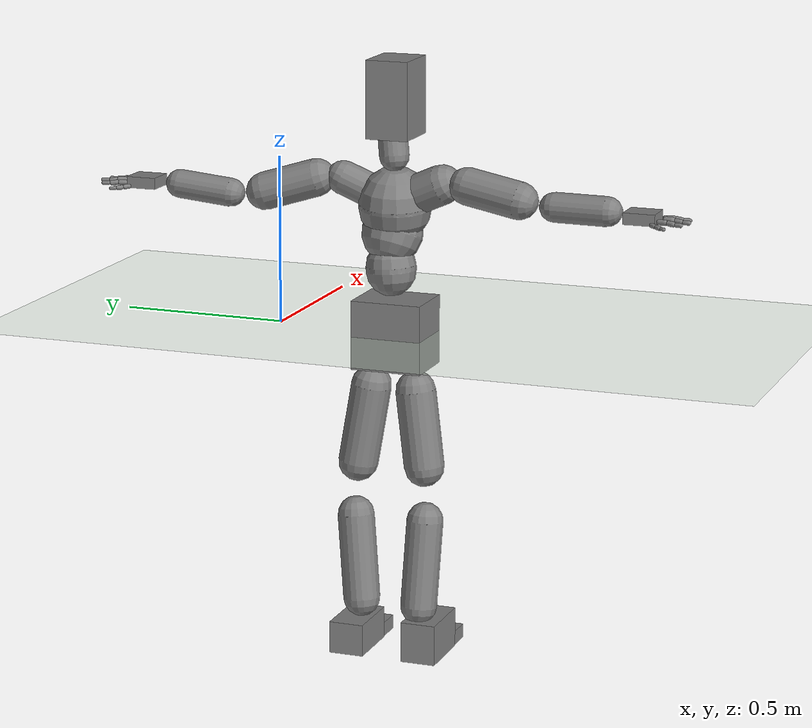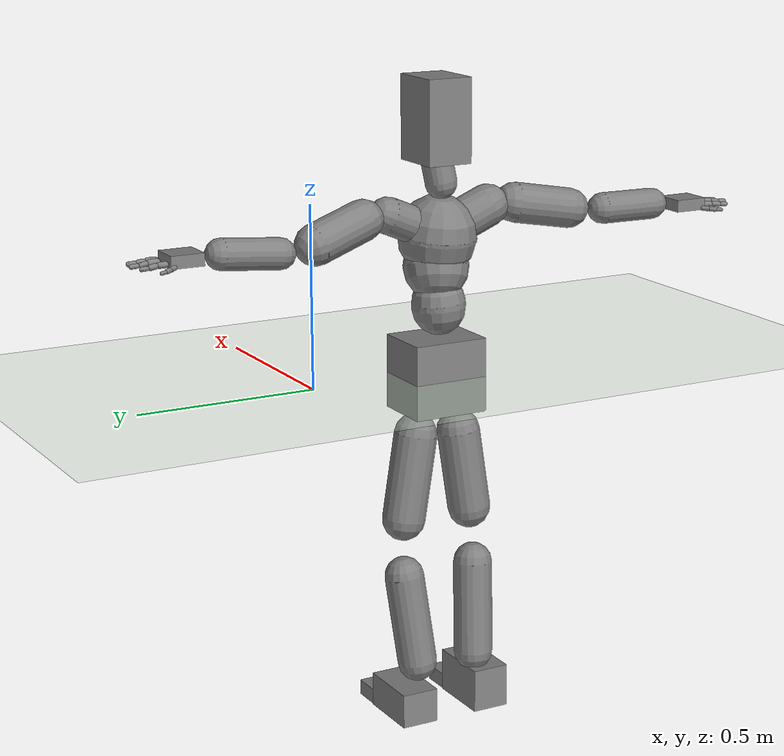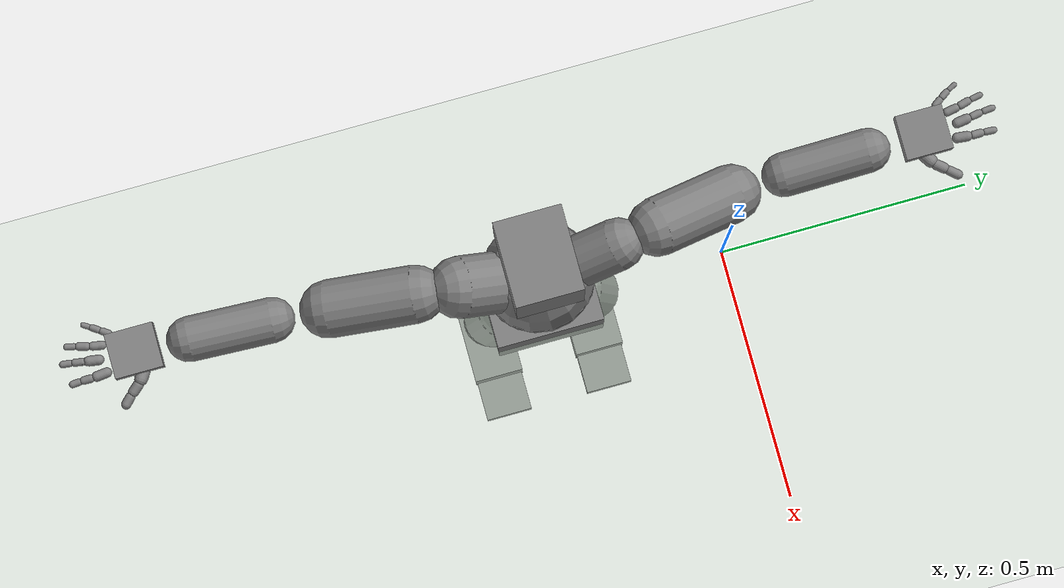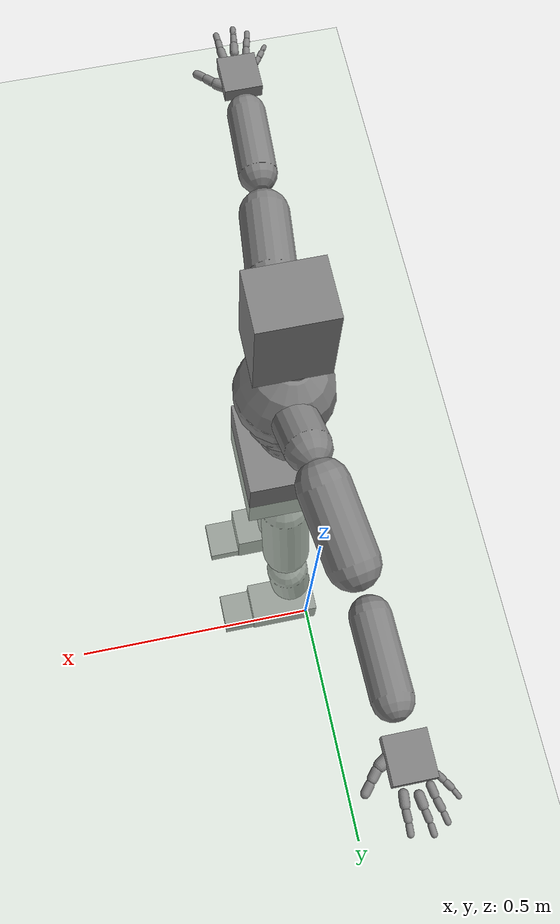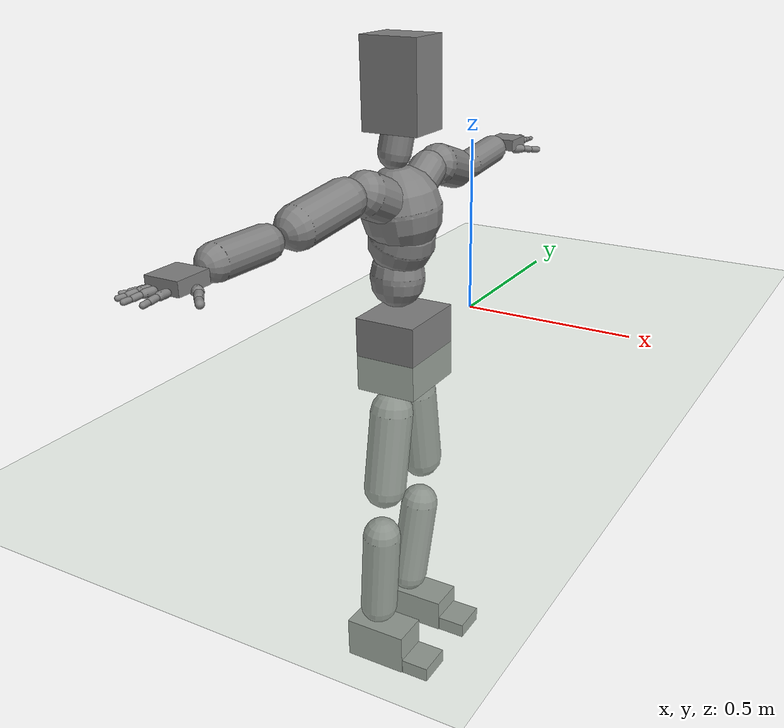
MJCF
<mujoco model="humanoid">
  <compiler coordinate="local"/>
  <statistic extent="2" center="0 0 1"/>
  <option timestep="0.00555"/>
  <default>
    <motor ctrlrange="-1 1" ctrllimited="true"/>
    <geom type="capsule" condim="1" friction="1.0 0.05 0.05" solimp=".9 .99 .003" solref=".015 1"/>
    <joint type="hinge" damping="0.1" stiffness="5" armature=".007" limited="true" solimplimit="0 .99 .01"/>
    <site size=".04" group="3"/>
    <default class="force-torque">
      <site type="box" size=".01 .01 .02" rgba="1 0 0 1"/>
    </default>
    <default class="touch">
      <site type="capsule" rgba="0 0 1 .3"/>
    </default>
  </default>
  <asset>
    <texture type="skybox" builtin="gradient" rgb1=".4 .5 .6" rgb2="0 0 0" width="100" height="100"/>
    <texture builtin="flat" height="1278" mark="cross" markrgb="1 1 1" name="texgeom" random="0.01" rgb1="0.8 0.6 0.4" rgb2="0.8 0.6 0.4" type="cube" width="127"/>
    <texture builtin="checker" height="100" name="texplane" rgb1="0 0 0" rgb2="0.8 0.8 0.8" type="2d" width="100"/>
    <material name="MatPlane" reflectance="0.5" shininess="1" specular="1" texrepeat="60 60" texture="texplane"/>
    <material name="geom" texture="texgeom" texuniform="true"/>
  </asset>
  <worldbody>
    <light cutoff="100" diffuse="1 1 1" dir="-0 0 -1.3" directional="true" exponent="1" pos="0 0 1.3" specular=".1 .1 .1"/>
    <geom conaffinity="1" condim="3" name="floor" pos="0 0 0" rgba="0.8 0.9 0.8 1" size="100 100 .2" type="plane" material="MatPlane"/>
    <body name="Pelvis" pos="0.0012 -0.3668 0.0127">
      <freejoint name="Pelvis"/>
      <geom type="box" density="2767.500899" pos="-0.0139 -0.0012 -0.0105" size="0.0865 0.1069 0.1033" quat="1.0000 0.0000 0.0000 0.0000"/>
      <body name="L_Hip" pos="-0.0235 0.0561 -0.0945">
        <joint name="L_Hip_x" type="hinge" pos="0 0 0" axis="1 0 0" stiffness="800" damping="80" armature="0.02" range="-90.0000 90.0000"/>
        <joint name="L_Hip_y" type="hinge" pos="0 0 0" axis="0 1 0" stiffness="800" damping="80" armature="0.02" range="-90.0000 90.0000"/>
        <joint name="L_Hip_z" type="hinge" pos="0 0 0" axis="0 0 1" stiffness="800" damping="80" armature="0.02" range="-90.0000 90.0000"/>
        <geom type="capsule" contype="1" conaffinity="1" density="2040.816327" fromto="-0.0013 0.0134 -0.0794 -0.0053 0.0538 -0.3175" size="0.0601"/>
        <body name="L_Knee" pos="-0.0067 0.0672 -0.3969">
          <joint name="L_Knee_x" type="hinge" pos="0 0 0" axis="1 0 0" stiffness="800" damping="80" armature="0.02" range="-5.6250 5.6250"/>
          <joint name="L_Knee_y" type="hinge" pos="0 0 0" axis="0 1 0" stiffness="800" damping="80" armature="0.02" range="0.0000 180.0000"/>
          <joint name="L_Knee_z" type="hinge" pos="0 0 0" axis="0 0 1" stiffness="800" damping="80" armature="0.02" range="-5.6250 5.6250"/>
          <geom type="capsule" contype="1" conaffinity="1" density="1234.567901" fromto="-0.0082 -0.0091 -0.0843 -0.0329 -0.0365 -0.3370" size="0.055"/>
          <body name="L_Ankle" pos="-0.0411 -0.0456 -0.4213">
            <joint name="L_Ankle_x" type="hinge" pos="0 0 0" axis="1 0 0" stiffness="800" damping="80" armature="0.02" range="-45.0000 45.0000"/>
            <joint name="L_Ankle_y" type="hinge" pos="0 0 0" axis="0 1 0" stiffness="800" damping="80" armature="0.02" range="-90.0000 90.0000"/>
            <joint name="L_Ankle_z" type="hinge" pos="0 0 0" axis="0 0 1" stiffness="800" damping="80" armature="0.02" range="-45.0000 45.0000"/>
            <geom type="box" density="441.756755" pos="0.0359 0.0352 -0.0298" size="0.0931 0.0527 0.0485" quat="1.0000 0.0000 0.0000 0.0000"/>
            <body name="L_Toe" pos="0.1352 0.0443 -0.0607">
              <joint name="L_Toe_x" type="hinge" pos="0 0 0" axis="1 0 0" stiffness="500" damping="50" armature="0.02" range="-180.0000 180.0000"/>
              <joint name="L_Toe_y" type="hinge" pos="0 0 0" axis="0 1 0" stiffness="500" damping="50" armature="0.02" range="-180.0000 180.0000"/>
              <joint name="L_Toe_z" type="hinge" pos="0 0 0" axis="0 0 1" stiffness="500" damping="50" armature="0.02" range="-180.0000 180.0000"/>
              <geom type="box" density="417.464551" pos="0.0248 -0.0091 0.0040" size="0.0522 0.0501 0.0216" quat="1.0000 0.0000 0.0000 0.0000"/>
            </body>
          </body>
        </body>
      </body>
      <body name="R_Hip" pos="-0.0166 -0.0579 -0.1052">
        <joint name="R_Hip_x" type="hinge" pos="0 0 0" axis="1 0 0" stiffness="800" damping="80" armature="0.02" range="-90.0000 90.0000"/>
        <joint name="R_Hip_y" type="hinge" pos="0 0 0" axis="0 1 0" stiffness="800" damping="80" armature="0.02" range="-90.0000 90.0000"/>
        <joint name="R_Hip_z" type="hinge" pos="0 0 0" axis="0 0 1" stiffness="800" damping="80" armature="0.02" range="-90.0000 90.0000"/>
        <geom type="capsule" contype="1" conaffinity="1" density="2040.816327" fromto="-0.0029 -0.0101 -0.0760 -0.0116 -0.0406 -0.3039" size="0.0599"/>
        <body name="R_Knee" pos="-0.0145 -0.0507 -0.3798">
          <joint name="R_Knee_x" type="hinge" pos="0 0 0" axis="1 0 0" stiffness="800" damping="80" armature="0.02" range="-5.6250 5.6250"/>
          <joint name="R_Knee_y" type="hinge" pos="0 0 0" axis="0 1 0" stiffness="800" damping="80" armature="0.02" range="0.0000 180.0000"/>
          <joint name="R_Knee_z" type="hinge" pos="0 0 0" axis="0 0 1" stiffness="800" damping="80" armature="0.02" range="-5.6250 5.6250"/>
          <geom type="capsule" contype="1" conaffinity="1" density="1234.567901" fromto="-0.0080 0.0034 -0.0870 -0.0320 0.0137 -0.3479" size="0.0547"/>
          <body name="R_Ankle" pos="-0.0399 0.0172 -0.4349">
            <joint name="R_Ankle_x" type="hinge" pos="0 0 0" axis="1 0 0" stiffness="800" damping="80" armature="0.02" range="-45.0000 45.0000"/>
            <joint name="R_Ankle_y" type="hinge" pos="0 0 0" axis="0 1 0" stiffness="800" damping="80" armature="0.02" range="-90.0000 90.0000"/>
            <joint name="R_Ankle_z" type="hinge" pos="0 0 0" axis="0 0 1" stiffness="800" damping="80" armature="0.02" range="-45.0000 45.0000"/>
            <geom type="box" density="421.48267" pos="0.0356 -0.0238 -0.0103" size="0.0931 0.0527 0.0612" quat="1.0000 0.0000 0.0000 0.0000"/>
            <body name="R_Toe" pos="0.1418 -0.0354 -0.0597">
              <joint name="R_Toe_x" type="hinge" pos="0 0 0" axis="1 0 0" stiffness="500" damping="50" armature="0.02" range="-180.0000 180.0000"/>
              <joint name="R_Toe_y" type="hinge" pos="0 0 0" axis="0 1 0" stiffness="500" damping="50" armature="0.02" range="-180.0000 180.0000"/>
              <joint name="R_Toe_z" type="hinge" pos="0 0 0" axis="0 0 1" stiffness="500" damping="50" armature="0.02" range="-180.0000 180.0000"/>
              <geom type="box" density="406.234984" pos="0.0178 0.0116 0.0097" size="0.0522 0.0501 0.0216" quat="1.0000 0.0000 0.0000 0.0000"/>
            </body>
          </body>
        </body>
      </body>
      <body name="Torso" pos="-0.0379 -0.0013 0.1104">
        <joint name="Torso_x" type="hinge" pos="0 0 0" axis="1 0 0" stiffness="1000" damping="100" armature="0.02" range="-60.0000 60.0000"/>
        <joint name="Torso_y" type="hinge" pos="0 0 0" axis="0 1 0" stiffness="1000" damping="100" armature="0.02" range="-60.0000 60.0000"/>
        <joint name="Torso_z" type="hinge" pos="0 0 0" axis="0 0 1" stiffness="1000" damping="100" armature="0.02" range="-60.0000 60.0000"/>
        <geom type="capsule" contype="1" conaffinity="1" density="2040.816327" fromto="0.0020 0.0046 0.0679 0.0024 0.0056 0.0830" size="0.0742"/>
        <body name="Spine" pos="0.0044 0.0102 0.151">
          <joint name="Spine_x" type="hinge" pos="0 0 0" axis="1 0 0" stiffness="1000" damping="100" armature="0.02" range="-60.0000 60.0000"/>
          <joint name="Spine_y" type="hinge" pos="0 0 0" axis="0 1 0" stiffness="1000" damping="100" armature="0.02" range="-60.0000 60.0000"/>
          <joint name="Spine_z" type="hinge" pos="0 0 0" axis="0 0 1" stiffness="1000" damping="100" armature="0.02" range="-60.0000 60.0000"/>
          <geom type="capsule" contype="1" conaffinity="1" density="2040.816327" fromto="0.0102 -0.0040 0.0260 0.0125 -0.0049 0.0318" size="0.0904"/>
          <body name="Chest" pos="0.0227 -0.009 0.0578">
            <joint name="Chest_x" type="hinge" pos="0 0 0" axis="1 0 0" stiffness="1000" damping="100" armature="0.02" range="-60.0000 60.0000"/>
            <joint name="Chest_y" type="hinge" pos="0 0 0" axis="0 1 0" stiffness="1000" damping="100" armature="0.02" range="-60.0000 60.0000"/>
            <joint name="Chest_z" type="hinge" pos="0 0 0" axis="0 0 1" stiffness="1000" damping="100" armature="0.02" range="-60.0000 60.0000"/>
            <geom type="capsule" contype="1" conaffinity="1" density="2040.816327" fromto="-0.0062 -0.0020 0.0479 -0.0075 -0.0024 0.0585" size="0.1081"/>
            <body name="Neck" pos="-0.0272 -0.0096 0.166">
              <joint name="Neck_x" type="hinge" pos="0 0 0" axis="1 0 0" stiffness="500" damping="50" armature="0.02" range="-5.6250 5.6250"/>
              <joint name="Neck_y" type="hinge" pos="0 0 0" axis="0 1 0" stiffness="500" damping="50" armature="0.02" range="-90.0000 90.0000"/>
              <joint name="Neck_z" type="hinge" pos="0 0 0" axis="0 0 1" stiffness="500" damping="50" armature="0.02" range="-90.0000 90.0000"/>
              <geom type="capsule" contype="1" conaffinity="1" density="1000" fromto="0.0046 0.0046 0.0321 0.0184 0.0183 0.1286" size="0.0437"/>
              <body name="Head" pos="0.0229 0.0229 0.1607">
                <joint name="Head_x" type="hinge" pos="0 0 0" axis="1 0 0" stiffness="500" damping="50" armature="0.02" range="-5.6250 5.6250"/>
                <joint name="Head_y" type="hinge" pos="0 0 0" axis="0 1 0" stiffness="500" damping="50" armature="0.02" range="-90.0000 90.0000"/>
                <joint name="Head_z" type="hinge" pos="0 0 0" axis="0 0 1" stiffness="500" damping="50" armature="0.02" range="-90.0000 90.0000"/>
                <geom type="box" density="1029.517091" pos="0.0030 -0.0144 0.0411" size="0.0788 0.0633 0.1146" quat="1.0000 0.0000 0.0000 0.0000"/>
              </body>
            </body>
            <body name="L_Thorax" pos="-0.0053 0.0424 0.0763">
              <joint name="L_Thorax_x" type="hinge" pos="0 0 0" axis="1 0 0" stiffness="500" damping="50" armature="0.02" range="-5.6250 5.6250"/>
              <joint name="L_Thorax_y" type="hinge" pos="0 0 0" axis="0 1 0" stiffness="500" damping="50" armature="0.02" range="-5.6250 5.6250"/>
              <joint name="L_Thorax_z" type="hinge" pos="0 0 0" axis="0 0 1" stiffness="500" damping="50" armature="0.02" range="-5.6250 5.6250"/>
              <geom type="capsule" contype="1" conaffinity="1" density="1000" fromto="-0.0030 0.0282 0.0121 -0.0119 0.1128 0.0483" size="0.0501"/>
              <body name="L_Shoulder" pos="-0.0149 0.1409 0.0604">
                <joint name="L_Shoulder_x" type="hinge" pos="0 0 0" axis="1 0 0" stiffness="500" damping="50" armature="0.02" range="-180.0000 180.0000"/>
                <joint name="L_Shoulder_y" type="hinge" pos="0 0 0" axis="0 1 0" stiffness="500" damping="50" armature="0.02" range="-180.0000 180.0000"/>
                <joint name="L_Shoulder_z" type="hinge" pos="0 0 0" axis="0 0 1" stiffness="500" damping="50" armature="0.02" range="-180.0000 180.0000"/>
                <geom type="capsule" contype="1" conaffinity="1" density="1000" fromto="-0.0091 0.0509 -0.0152 -0.0364 0.2038 -0.0609" size="0.056"/>
                <body name="L_Elbow" pos="-0.0455 0.2547 -0.0762">
                  <joint name="L_Elbow_x" type="hinge" pos="0 0 0" axis="1 0 0" stiffness="500" damping="50" armature="0.02" range="-5.6250 5.6250"/>
                  <joint name="L_Elbow_y" type="hinge" pos="0 0 0" axis="0 1 0" stiffness="500" damping="50" armature="0.02" range="-5.6250 5.6250"/>
                  <joint name="L_Elbow_z" type="hinge" pos="0 0 0" axis="0 0 1" stiffness="500" damping="50" armature="0.02" range="-180.0000 0.0000"/>
                  <geom type="capsule" contype="1" conaffinity="1" density="1000" fromto="-0.0001 0.0543 0.0051 -0.0005 0.2173 0.0205" size="0.0423"/>
                  <body name="L_Wrist" pos="-0.0006 0.2716 0.0256">
                    <joint name="L_Wrist_x" type="hinge" pos="0 0 0" axis="1 0 0" stiffness="300" damping="30" armature="0.02" range="-180.0000 180.0000"/>
                    <joint name="L_Wrist_y" type="hinge" pos="0 0 0" axis="0 1 0" stiffness="300" damping="30" armature="0.02" range="-180.0000 180.0000"/>
                    <joint name="L_Wrist_z" type="hinge" pos="0 0 0" axis="0 0 1" stiffness="300" damping="30" armature="0.02" range="-180.0000 180.0000"/>
                    <geom type="box" density="1210.124736" pos="-0.0030 0.0540 -0.0029" size="0.0428 0.0452 0.0169" quat="1.0000 0.0000 0.0000 0.0000"/>
                    <body name="L_Index1" pos="0.0211 0.1061 -0.0086">
                      <joint name="L_Index1_x" type="hinge" pos="0 0 0" axis="1 0 0" stiffness="100" damping="10" armature="0.02" range="-180.0000 180.0000"/>
                      <joint name="L_Index1_y" type="hinge" pos="0 0 0" axis="0 1 0" stiffness="100" damping="10" armature="0.02" range="-180.0000 180.0000"/>
                      <joint name="L_Index1_z" type="hinge" pos="0 0 0" axis="0 0 1" stiffness="100" damping="10" armature="0.02" range="-180.0000 180.0000"/>
                      <geom type="capsule" contype="1" conaffinity="1" density="1000" fromto="0.0007 0.0067 0.0003 0.0029 0.0267 0.0013" size="0.0097"/>
                      <body name="L_Index2" pos="0.0037 0.0333 0.0016">
                        <joint name="L_Index2_x" type="hinge" pos="0 0 0" axis="1 0 0" stiffness="100" damping="10" armature="0.02" range="-180.0000 180.0000"/>
                        <joint name="L_Index2_y" type="hinge" pos="0 0 0" axis="0 1 0" stiffness="100" damping="10" armature="0.02" range="-180.0000 180.0000"/>
                        <joint name="L_Index2_z" type="hinge" pos="0 0 0" axis="0 0 1" stiffness="100" damping="10" armature="0.02" range="-180.0000 180.0000"/>
                        <geom type="capsule" contype="1" conaffinity="1" density="1000" fromto="-0.0000 0.0047 -0.0005 -0.0002 0.0188 -0.0022" size="0.0079"/>
                        <body name="L_Index3" pos="-0.0002 0.0235 -0.0027">
                          <joint name="L_Index3_x" type="hinge" pos="0 0 0" axis="1 0 0" stiffness="100" damping="10" armature="0.02" range="-180.0000 180.0000"/>
                          <joint name="L_Index3_y" type="hinge" pos="0 0 0" axis="0 1 0" stiffness="100" damping="10" armature="0.02" range="-180.0000 180.0000"/>
                          <joint name="L_Index3_z" type="hinge" pos="0 0 0" axis="0 0 1" stiffness="100" damping="10" armature="0.02" range="-180.0000 180.0000"/>
                          <geom type="capsule" contype="1" conaffinity="1" density="1000" fromto="0.0004 0.0051 -0.0001 0.0014 0.0204 -0.0006" size="0.0067"/>
                        </body>
                      </body>
                    </body>
                    <body name="L_Middle1" pos="-0.004 0.1142 -0.0059">
                      <joint name="L_Middle1_x" type="hinge" pos="0 0 0" axis="1 0 0" stiffness="100" damping="10" armature="0.02" range="-180.0000 180.0000"/>
                      <joint name="L_Middle1_y" type="hinge" pos="0 0 0" axis="0 1 0" stiffness="100" damping="10" armature="0.02" range="-180.0000 180.0000"/>
                      <joint name="L_Middle1_z" type="hinge" pos="0 0 0" axis="0 0 1" stiffness="100" damping="10" armature="0.02" range="-180.0000 180.0000"/>
                      <geom type="capsule" contype="1" conaffinity="1" density="1000" fromto="-0.0009 0.0064 0.0001 -0.0036 0.0255 0.0003" size="0.0098"/>
                      <body name="L_Middle2" pos="-0.0045 0.0319 0.0004">
                        <joint name="L_Middle2_x" type="hinge" pos="0 0 0" axis="1 0 0" stiffness="100" damping="10" armature="0.02" range="-180.0000 180.0000"/>
                        <joint name="L_Middle2_y" type="hinge" pos="0 0 0" axis="0 1 0" stiffness="100" damping="10" armature="0.02" range="-180.0000 180.0000"/>
                        <joint name="L_Middle2_z" type="hinge" pos="0 0 0" axis="0 0 1" stiffness="100" damping="10" armature="0.02" range="-180.0000 180.0000"/>
                        <geom type="capsule" contype="1" conaffinity="1" density="1000" fromto="-0.0009 0.0049 -0.0005 -0.0035 0.0195 -0.0020" size="0.0073"/>
                        <body name="L_Middle3" pos="-0.0044 0.0244 -0.0025">
                          <joint name="L_Middle3_x" type="hinge" pos="0 0 0" axis="1 0 0" stiffness="100" damping="10" armature="0.02" range="-180.0000 180.0000"/>
                          <joint name="L_Middle3_y" type="hinge" pos="0 0 0" axis="0 1 0" stiffness="100" damping="10" armature="0.02" range="-180.0000 180.0000"/>
                          <joint name="L_Middle3_z" type="hinge" pos="0 0 0" axis="0 0 1" stiffness="100" damping="10" armature="0.02" range="-180.0000 180.0000"/>
                          <geom type="capsule" contype="1" conaffinity="1" density="1000" fromto="-0.0005 0.0053 -0.0001 -0.0019 0.0211 -0.0004" size="0.0064"/>
                        </body>
                      </body>
                    </body>
                    <body name="L_Pinky1" pos="-0.0465 0.0881 -0.0147">
                      <joint name="L_Pinky1_x" type="hinge" pos="0 0 0" axis="1 0 0" stiffness="100" damping="10" armature="0.02" range="-180.0000 180.0000"/>
                      <joint name="L_Pinky1_y" type="hinge" pos="0 0 0" axis="0 1 0" stiffness="100" damping="10" armature="0.02" range="-180.0000 180.0000"/>
                      <joint name="L_Pinky1_z" type="hinge" pos="0 0 0" axis="0 0 1" stiffness="100" damping="10" armature="0.02" range="-180.0000 180.0000"/>
                      <geom type="capsule" contype="1" conaffinity="1" density="1000" fromto="-0.0024 0.0034 -0.0003 -0.0096 0.0136 -0.0014" size="0.007"/>
                      <body name="L_Pinky2" pos="-0.012 0.017 -0.0017">
                        <joint name="L_Pinky2_x" type="hinge" pos="0 0 0" axis="1 0 0" stiffness="100" damping="10" armature="0.02" range="-180.0000 180.0000"/>
                        <joint name="L_Pinky2_y" type="hinge" pos="0 0 0" axis="0 1 0" stiffness="100" damping="10" armature="0.02" range="-180.0000 180.0000"/>
                        <joint name="L_Pinky2_z" type="hinge" pos="0 0 0" axis="0 0 1" stiffness="100" damping="10" armature="0.02" range="-180.0000 180.0000"/>
                        <geom type="capsule" contype="1" conaffinity="1" density="1000" fromto="-0.0022 0.0033 -0.0004 -0.0090 0.0133 -0.0016" size="0.0067"/>
                        <body name="L_Pinky3" pos="-0.0112 0.0167 -0.002">
                          <joint name="L_Pinky3_x" type="hinge" pos="0 0 0" axis="1 0 0" stiffness="100" damping="10" armature="0.02" range="-180.0000 180.0000"/>
                          <joint name="L_Pinky3_y" type="hinge" pos="0 0 0" axis="0 1 0" stiffness="100" damping="10" armature="0.02" range="-180.0000 180.0000"/>
                          <joint name="L_Pinky3_z" type="hinge" pos="0 0 0" axis="0 0 1" stiffness="100" damping="10" armature="0.02" range="-180.0000 180.0000"/>
                          <geom type="capsule" contype="1" conaffinity="1" density="1000" fromto="-0.0018 0.0037 -0.0000 -0.0074 0.0149 -0.0000" size="0.0051"/>
                        </body>
                      </body>
                    </body>
                    <body name="L_Ring1" pos="-0.0289 0.1019 -0.0089">
                      <joint name="L_Ring1_x" type="hinge" pos="0 0 0" axis="1 0 0" stiffness="100" damping="10" armature="0.02" range="-180.0000 180.0000"/>
                      <joint name="L_Ring1_y" type="hinge" pos="0 0 0" axis="0 1 0" stiffness="100" damping="10" armature="0.02" range="-180.0000 180.0000"/>
                      <joint name="L_Ring1_z" type="hinge" pos="0 0 0" axis="0 0 1" stiffness="100" damping="10" armature="0.02" range="-180.0000 180.0000"/>
                      <geom type="capsule" contype="1" conaffinity="1" density="1000" fromto="-0.0010 0.0059 0.0001 -0.0041 0.0237 0.0005" size="0.0083"/>
                      <body name="L_Ring2" pos="-0.0051 0.0296 0.0006">
                        <joint name="L_Ring2_x" type="hinge" pos="0 0 0" axis="1 0 0" stiffness="100" damping="10" armature="0.02" range="-180.0000 180.0000"/>
                        <joint name="L_Ring2_y" type="hinge" pos="0 0 0" axis="0 1 0" stiffness="100" damping="10" armature="0.02" range="-180.0000 180.0000"/>
                        <joint name="L_Ring2_z" type="hinge" pos="0 0 0" axis="0 0 1" stiffness="100" damping="10" armature="0.02" range="-180.0000 180.0000"/>
                        <geom type="capsule" contype="1" conaffinity="1" density="1000" fromto="-0.0014 0.0048 -0.0005 -0.0055 0.0192 -0.0019" size="0.0078"/>
                        <body name="L_Ring3" pos="-0.0068 0.0239 -0.0023">
                          <joint name="L_Ring3_x" type="hinge" pos="0 0 0" axis="1 0 0" stiffness="100" damping="10" armature="0.02" range="-180.0000 180.0000"/>
                          <joint name="L_Ring3_y" type="hinge" pos="0 0 0" axis="0 1 0" stiffness="100" damping="10" armature="0.02" range="-180.0000 180.0000"/>
                          <joint name="L_Ring3_z" type="hinge" pos="0 0 0" axis="0 0 1" stiffness="100" damping="10" armature="0.02" range="-180.0000 180.0000"/>
                          <geom type="capsule" contype="1" conaffinity="1" density="1000" fromto="-0.0010 0.0052 -0.0001 -0.0039 0.0208 -0.0003" size="0.006"/>
                        </body>
                      </body>
                    </body>
                    <body name="L_Thumb1" pos="0.0277 0.0417 -0.0201">
                      <joint name="L_Thumb1_x" type="hinge" pos="0 0 0" axis="1 0 0" stiffness="100" damping="10" armature="0.02" range="-180.0000 180.0000"/>
                      <joint name="L_Thumb1_y" type="hinge" pos="0 0 0" axis="0 1 0" stiffness="100" damping="10" armature="0.02" range="-180.0000 180.0000"/>
                      <joint name="L_Thumb1_z" type="hinge" pos="0 0 0" axis="0 0 1" stiffness="100" damping="10" armature="0.02" range="-180.0000 180.0000"/>
                      <geom type="capsule" contype="1" conaffinity="1" density="1000" fromto="0.0055 0.0034 0.0004 0.0218 0.0137 0.0015" size="0.0128"/>
                      <body name="L_Thumb2" pos="0.0273 0.0171 0.0018">
                        <joint name="L_Thumb2_x" type="hinge" pos="0 0 0" axis="1 0 0" stiffness="100" damping="10" armature="0.02" range="-180.0000 180.0000"/>
                        <joint name="L_Thumb2_y" type="hinge" pos="0 0 0" axis="0 1 0" stiffness="100" damping="10" armature="0.02" range="-180.0000 180.0000"/>
                        <joint name="L_Thumb2_z" type="hinge" pos="0 0 0" axis="0 0 1" stiffness="100" damping="10" armature="0.02" range="-180.0000 180.0000"/>
                        <geom type="capsule" contype="1" conaffinity="1" density="1000" fromto="0.0034 0.0042 -0.0009 0.0136 0.0167 -0.0038" size="0.0102"/>
                        <body name="L_Thumb3" pos="0.017 0.0209 -0.0047">
                          <joint name="L_Thumb3_x" type="hinge" pos="0 0 0" axis="1 0 0" stiffness="100" damping="10" armature="0.02" range="-180.0000 180.0000"/>
                          <joint name="L_Thumb3_y" type="hinge" pos="0 0 0" axis="0 1 0" stiffness="100" damping="10" armature="0.02" range="-180.0000 180.0000"/>
                          <joint name="L_Thumb3_z" type="hinge" pos="0 0 0" axis="0 0 1" stiffness="100" damping="10" armature="0.02" range="-180.0000 180.0000"/>
                          <geom type="capsule" contype="1" conaffinity="1" density="1000" fromto="0.0038 0.0046 -0.0005 0.0152 0.0183 -0.0022" size="0.0092"/>
                        </body>
                      </body>
                    </body>
                  </body>
                </body>
              </body>
            </body>
            <body name="R_Thorax" pos="-0.0085 -0.0461 0.0768">
              <joint name="R_Thorax_x" type="hinge" pos="0 0 0" axis="1 0 0" stiffness="500" damping="50" armature="0.02" range="-5.6250 5.6250"/>
              <joint name="R_Thorax_y" type="hinge" pos="0 0 0" axis="0 1 0" stiffness="500" damping="50" armature="0.02" range="-5.6250 5.6250"/>
              <joint name="R_Thorax_z" type="hinge" pos="0 0 0" axis="0 0 1" stiffness="500" damping="50" armature="0.02" range="-5.6250 5.6250"/>
              <geom type="capsule" contype="1" conaffinity="1" density="1000" fromto="-0.0025 -0.0261 0.0118 -0.0101 -0.1043 0.0471" size="0.0589"/>
              <body name="R_Shoulder" pos="-0.0126 -0.1304 0.0588">
                <joint name="R_Shoulder_x" type="hinge" pos="0 0 0" axis="1 0 0" stiffness="500" damping="50" armature="0.02" range="-180.0000 180.0000"/>
                <joint name="R_Shoulder_y" type="hinge" pos="0 0 0" axis="0 1 0" stiffness="500" damping="50" armature="0.02" range="-180.0000 180.0000"/>
                <joint name="R_Shoulder_z" type="hinge" pos="0 0 0" axis="0 0 1" stiffness="500" damping="50" armature="0.02" range="-180.0000 180.0000"/>
                <geom type="capsule" contype="1" conaffinity="1" density="1000" fromto="-0.0065 -0.0545 -0.0092 -0.0259 -0.2180 -0.0367" size="0.0552"/>
                <body name="R_Elbow" pos="-0.0324 -0.2725 -0.0459">
                  <joint name="R_Elbow_x" type="hinge" pos="0 0 0" axis="1 0 0" stiffness="500" damping="50" armature="0.02" range="-5.6250 5.6250"/>
                  <joint name="R_Elbow_y" type="hinge" pos="0 0 0" axis="0 1 0" stiffness="500" damping="50" armature="0.02" range="-5.6250 5.6250"/>
                  <joint name="R_Elbow_z" type="hinge" pos="0 0 0" axis="0 0 1" stiffness="500" damping="50" armature="0.02" range="0.0000 180.0000"/>
                  <geom type="capsule" contype="1" conaffinity="1" density="1000" fromto="-0.0024 -0.0527 0.0000 -0.0095 -0.2107 0.0000" size="0.0433"/>
                  <body name="R_Wrist" pos="-0.0118 -0.2634 0">
                    <joint name="R_Wrist_x" type="hinge" pos="0 0 0" axis="1 0 0" stiffness="300" damping="30" armature="0.02" range="-180.0000 180.0000"/>
                    <joint name="R_Wrist_y" type="hinge" pos="0 0 0" axis="0 1 0" stiffness="300" damping="30" armature="0.02" range="-180.0000 180.0000"/>
                    <joint name="R_Wrist_z" type="hinge" pos="0 0 0" axis="0 0 1" stiffness="300" damping="30" armature="0.02" range="-180.0000 180.0000"/>
                    <geom type="box" density="1233.566771" pos="-0.0039 -0.0520 -0.0065" size="0.0428 0.0464 0.0169" quat="1.0000 0.0000 0.0000 0.0000"/>
                    <body name="R_Index1" pos="0.0201 -0.1056 -0.0122">
                      <joint name="R_Index1_x" type="hinge" pos="0 0 0" axis="1 0 0" stiffness="100" damping="10" armature="0.02" range="-180.0000 180.0000"/>
                      <joint name="R_Index1_y" type="hinge" pos="0 0 0" axis="0 1 0" stiffness="100" damping="10" armature="0.02" range="-180.0000 180.0000"/>
                      <joint name="R_Index1_z" type="hinge" pos="0 0 0" axis="0 0 1" stiffness="100" damping="10" armature="0.02" range="-180.0000 180.0000"/>
                      <geom type="capsule" contype="1" conaffinity="1" density="1000" fromto="0.0007 -0.0067 0.0003 0.0029 -0.0267 0.0013" size="0.0097"/>
                      <body name="R_Index2" pos="0.0037 -0.0333 0.0016">
                        <joint name="R_Index2_x" type="hinge" pos="0 0 0" axis="1 0 0" stiffness="100" damping="10" armature="0.02" range="-180.0000 180.0000"/>
                        <joint name="R_Index2_y" type="hinge" pos="0 0 0" axis="0 1 0" stiffness="100" damping="10" armature="0.02" range="-180.0000 180.0000"/>
                        <joint name="R_Index2_z" type="hinge" pos="0 0 0" axis="0 0 1" stiffness="100" damping="10" armature="0.02" range="-180.0000 180.0000"/>
                        <geom type="capsule" contype="1" conaffinity="1" density="1000" fromto="-0.0000 -0.0047 -0.0005 -0.0002 -0.0188 -0.0022" size="0.0079"/>
                        <body name="R_Index3" pos="-0.0002 -0.0235 -0.0027">
                          <joint name="R_Index3_x" type="hinge" pos="0 0 0" axis="1 0 0" stiffness="100" damping="10" armature="0.02" range="-180.0000 180.0000"/>
                          <joint name="R_Index3_y" type="hinge" pos="0 0 0" axis="0 1 0" stiffness="100" damping="10" armature="0.02" range="-180.0000 180.0000"/>
                          <joint name="R_Index3_z" type="hinge" pos="0 0 0" axis="0 0 1" stiffness="100" damping="10" armature="0.02" range="-180.0000 180.0000"/>
                          <geom type="capsule" contype="1" conaffinity="1" density="1000" fromto="0.0004 -0.0043 -0.0001 0.0014 -0.0172 -0.0006" size="0.007"/>
                        </body>
                      </body>
                    </body>
                    <body name="R_Middle1" pos="-0.0049 -0.1137 -0.0095">
                      <joint name="R_Middle1_x" type="hinge" pos="0 0 0" axis="1 0 0" stiffness="100" damping="10" armature="0.02" range="-180.0000 180.0000"/>
                      <joint name="R_Middle1_y" type="hinge" pos="0 0 0" axis="0 1 0" stiffness="100" damping="10" armature="0.02" range="-180.0000 180.0000"/>
                      <joint name="R_Middle1_z" type="hinge" pos="0 0 0" axis="0 0 1" stiffness="100" damping="10" armature="0.02" range="-180.0000 180.0000"/>
                      <geom type="capsule" contype="1" conaffinity="1" density="1000" fromto="-0.0009 -0.0064 0.0001 -0.0036 -0.0255 0.0003" size="0.0098"/>
                      <body name="R_Middle2" pos="-0.0045 -0.0319 0.0004">
                        <joint name="R_Middle2_x" type="hinge" pos="0 0 0" axis="1 0 0" stiffness="100" damping="10" armature="0.02" range="-180.0000 180.0000"/>
                        <joint name="R_Middle2_y" type="hinge" pos="0 0 0" axis="0 1 0" stiffness="100" damping="10" armature="0.02" range="-180.0000 180.0000"/>
                        <joint name="R_Middle2_z" type="hinge" pos="0 0 0" axis="0 0 1" stiffness="100" damping="10" armature="0.02" range="-180.0000 180.0000"/>
                        <geom type="capsule" contype="1" conaffinity="1" density="1000" fromto="-0.0009 -0.0049 -0.0005 -0.0035 -0.0195 -0.0020" size="0.0073"/>
                        <body name="R_Middle3" pos="-0.0044 -0.0244 -0.0025">
                          <joint name="R_Middle3_x" type="hinge" pos="0 0 0" axis="1 0 0" stiffness="100" damping="10" armature="0.02" range="-180.0000 180.0000"/>
                          <joint name="R_Middle3_y" type="hinge" pos="0 0 0" axis="0 1 0" stiffness="100" damping="10" armature="0.02" range="-180.0000 180.0000"/>
                          <joint name="R_Middle3_z" type="hinge" pos="0 0 0" axis="0 0 1" stiffness="100" damping="10" armature="0.02" range="-180.0000 180.0000"/>
                          <geom type="capsule" contype="1" conaffinity="1" density="1000" fromto="-0.0005 -0.0045 -0.0001 -0.0019 -0.0179 -0.0004" size="0.0067"/>
                        </body>
                      </body>
                    </body>
                    <body name="R_Pinky1" pos="-0.0474 -0.0877 -0.0184">
                      <joint name="R_Pinky1_x" type="hinge" pos="0 0 0" axis="1 0 0" stiffness="100" damping="10" armature="0.02" range="-180.0000 180.0000"/>
                      <joint name="R_Pinky1_y" type="hinge" pos="0 0 0" axis="0 1 0" stiffness="100" damping="10" armature="0.02" range="-180.0000 180.0000"/>
                      <joint name="R_Pinky1_z" type="hinge" pos="0 0 0" axis="0 0 1" stiffness="100" damping="10" armature="0.02" range="-180.0000 180.0000"/>
                      <geom type="capsule" contype="1" conaffinity="1" density="1000" fromto="-0.0024 -0.0034 -0.0003 -0.0096 -0.0136 -0.0014" size="0.007"/>
                      <body name="R_Pinky2" pos="-0.012 -0.017 -0.0017">
                        <joint name="R_Pinky2_x" type="hinge" pos="0 0 0" axis="1 0 0" stiffness="100" damping="10" armature="0.02" range="-180.0000 180.0000"/>
                        <joint name="R_Pinky2_y" type="hinge" pos="0 0 0" axis="0 1 0" stiffness="100" damping="10" armature="0.02" range="-180.0000 180.0000"/>
                        <joint name="R_Pinky2_z" type="hinge" pos="0 0 0" axis="0 0 1" stiffness="100" damping="10" armature="0.02" range="-180.0000 180.0000"/>
                        <geom type="capsule" contype="1" conaffinity="1" density="1000" fromto="-0.0022 -0.0033 -0.0004 -0.0090 -0.0133 -0.0016" size="0.0067"/>
                        <body name="R_Pinky3" pos="-0.0112 -0.0167 -0.002">
                          <joint name="R_Pinky3_x" type="hinge" pos="0 0 0" axis="1 0 0" stiffness="100" damping="10" armature="0.02" range="-180.0000 180.0000"/>
                          <joint name="R_Pinky3_y" type="hinge" pos="0 0 0" axis="0 1 0" stiffness="100" damping="10" armature="0.02" range="-180.0000 180.0000"/>
                          <joint name="R_Pinky3_z" type="hinge" pos="0 0 0" axis="0 0 1" stiffness="100" damping="10" armature="0.02" range="-180.0000 180.0000"/>
                          <geom type="capsule" contype="1" conaffinity="1" density="1000" fromto="-0.0018 -0.0029 -0.0000 -0.0074 -0.0117 -0.0000" size="0.0053"/>
                        </body>
                      </body>
                    </body>
                    <body name="R_Ring1" pos="-0.0299 -0.1014 -0.0126">
                      <joint name="R_Ring1_x" type="hinge" pos="0 0 0" axis="1 0 0" stiffness="100" damping="10" armature="0.02" range="-180.0000 180.0000"/>
                      <joint name="R_Ring1_y" type="hinge" pos="0 0 0" axis="0 1 0" stiffness="100" damping="10" armature="0.02" range="-180.0000 180.0000"/>
                      <joint name="R_Ring1_z" type="hinge" pos="0 0 0" axis="0 0 1" stiffness="100" damping="10" armature="0.02" range="-180.0000 180.0000"/>
                      <geom type="capsule" contype="1" conaffinity="1" density="1000" fromto="-0.0010 -0.0059 0.0001 -0.0041 -0.0237 0.0005" size="0.0083"/>
                      <body name="R_Ring2" pos="-0.0051 -0.0296 0.0006">
                        <joint name="R_Ring2_x" type="hinge" pos="0 0 0" axis="1 0 0" stiffness="100" damping="10" armature="0.02" range="-180.0000 180.0000"/>
                        <joint name="R_Ring2_y" type="hinge" pos="0 0 0" axis="0 1 0" stiffness="100" damping="10" armature="0.02" range="-180.0000 180.0000"/>
                        <joint name="R_Ring2_z" type="hinge" pos="0 0 0" axis="0 0 1" stiffness="100" damping="10" armature="0.02" range="-180.0000 180.0000"/>
                        <geom type="capsule" contype="1" conaffinity="1" density="1000" fromto="-0.0014 -0.0048 -0.0005 -0.0055 -0.0192 -0.0019" size="0.0078"/>
                        <body name="R_Ring3" pos="-0.0068 -0.0239 -0.0023">
                          <joint name="R_Ring3_x" type="hinge" pos="0 0 0" axis="1 0 0" stiffness="100" damping="10" armature="0.02" range="-180.0000 180.0000"/>
                          <joint name="R_Ring3_y" type="hinge" pos="0 0 0" axis="0 1 0" stiffness="100" damping="10" armature="0.02" range="-180.0000 180.0000"/>
                          <joint name="R_Ring3_z" type="hinge" pos="0 0 0" axis="0 0 1" stiffness="100" damping="10" armature="0.02" range="-180.0000 180.0000"/>
                          <geom type="capsule" contype="1" conaffinity="1" density="1000" fromto="-0.0010 -0.0044 -0.0001 -0.0039 -0.0176 -0.0003" size="0.0063"/>
                        </body>
                      </body>
                    </body>
                    <body name="R_Thumb1" pos="0.0268 -0.0412 -0.0237">
                      <joint name="R_Thumb1_x" type="hinge" pos="0 0 0" axis="1 0 0" stiffness="100" damping="10" armature="0.02" range="-180.0000 180.0000"/>
                      <joint name="R_Thumb1_y" type="hinge" pos="0 0 0" axis="0 1 0" stiffness="100" damping="10" armature="0.02" range="-180.0000 180.0000"/>
                      <joint name="R_Thumb1_z" type="hinge" pos="0 0 0" axis="0 0 1" stiffness="100" damping="10" armature="0.02" range="-180.0000 180.0000"/>
                      <geom type="capsule" contype="1" conaffinity="1" density="1000" fromto="0.0055 -0.0034 0.0004 0.0218 -0.0137 0.0015" size="0.0128"/>
                      <body name="R_Thumb2" pos="0.0273 -0.0171 0.0018">
                        <joint name="R_Thumb2_x" type="hinge" pos="0 0 0" axis="1 0 0" stiffness="100" damping="10" armature="0.02" range="-180.0000 180.0000"/>
                        <joint name="R_Thumb2_y" type="hinge" pos="0 0 0" axis="0 1 0" stiffness="100" damping="10" armature="0.02" range="-180.0000 180.0000"/>
                        <joint name="R_Thumb2_z" type="hinge" pos="0 0 0" axis="0 0 1" stiffness="100" damping="10" armature="0.02" range="-180.0000 180.0000"/>
                        <geom type="capsule" contype="1" conaffinity="1" density="1000" fromto="0.0034 -0.0042 -0.0009 0.0136 -0.0167 -0.0038" size="0.0102"/>
                        <body name="R_Thumb3" pos="0.017 -0.0209 -0.0047">
                          <joint name="R_Thumb3_x" type="hinge" pos="0 0 0" axis="1 0 0" stiffness="100" damping="10" armature="0.02" range="-180.0000 180.0000"/>
                          <joint name="R_Thumb3_y" type="hinge" pos="0 0 0" axis="0 1 0" stiffness="100" damping="10" armature="0.02" range="-180.0000 180.0000"/>
                          <joint name="R_Thumb3_z" type="hinge" pos="0 0 0" axis="0 0 1" stiffness="100" damping="10" armature="0.02" range="-180.0000 180.0000"/>
                          <geom type="capsule" contype="1" conaffinity="1" density="1000" fromto="0.0038 -0.0038 -0.0005 0.0152 -0.0151 -0.0022" size="0.0094"/>
                        </body>
                      </body>
                    </body>
                  </body>
                </body>
              </body>
            </body>
          </body>
        </body>
      </body>
    </body>
  </worldbody>
  <actuator>
    <motor name="L_Hip_x" joint="L_Hip_x" gear="500"/>
    <motor name="L_Hip_y" joint="L_Hip_y" gear="500"/>
    <motor name="L_Hip_z" joint="L_Hip_z" gear="500"/>
    <motor name="L_Knee_x" joint="L_Knee_x" gear="500"/>
    <motor name="L_Knee_y" joint="L_Knee_y" gear="500"/>
    <motor name="L_Knee_z" joint="L_Knee_z" gear="500"/>
    <motor name="L_Ankle_x" joint="L_Ankle_x" gear="500"/>
    <motor name="L_Ankle_y" joint="L_Ankle_y" gear="500"/>
    <motor name="L_Ankle_z" joint="L_Ankle_z" gear="500"/>
    <motor name="L_Toe_x" joint="L_Toe_x" gear="500"/>
    <motor name="L_Toe_y" joint="L_Toe_y" gear="500"/>
    <motor name="L_Toe_z" joint="L_Toe_z" gear="500"/>
    <motor name="R_Hip_x" joint="R_Hip_x" gear="500"/>
    <motor name="R_Hip_y" joint="R_Hip_y" gear="500"/>
    <motor name="R_Hip_z" joint="R_Hip_z" gear="500"/>
    <motor name="R_Knee_x" joint="R_Knee_x" gear="500"/>
    <motor name="R_Knee_y" joint="R_Knee_y" gear="500"/>
    <motor name="R_Knee_z" joint="R_Knee_z" gear="500"/>
    <motor name="R_Ankle_x" joint="R_Ankle_x" gear="500"/>
    <motor name="R_Ankle_y" joint="R_Ankle_y" gear="500"/>
    <motor name="R_Ankle_z" joint="R_Ankle_z" gear="500"/>
    <motor name="R_Toe_x" joint="R_Toe_x" gear="500"/>
    <motor name="R_Toe_y" joint="R_Toe_y" gear="500"/>
    <motor name="R_Toe_z" joint="R_Toe_z" gear="500"/>
    <motor name="Torso_x" joint="Torso_x" gear="500"/>
    <motor name="Torso_y" joint="Torso_y" gear="500"/>
    <motor name="Torso_z" joint="Torso_z" gear="500"/>
    <motor name="Spine_x" joint="Spine_x" gear="500"/>
    <motor name="Spine_y" joint="Spine_y" gear="500"/>
    <motor name="Spine_z" joint="Spine_z" gear="500"/>
    <motor name="Chest_x" joint="Chest_x" gear="500"/>
    <motor name="Chest_y" joint="Chest_y" gear="500"/>
    <motor name="Chest_z" joint="Chest_z" gear="500"/>
    <motor name="Neck_x" joint="Neck_x" gear="500"/>
    <motor name="Neck_y" joint="Neck_y" gear="500"/>
    <motor name="Neck_z" joint="Neck_z" gear="500"/>
    <motor name="Head_x" joint="Head_x" gear="500"/>
    <motor name="Head_y" joint="Head_y" gear="500"/>
    <motor name="Head_z" joint="Head_z" gear="500"/>
    <motor name="L_Thorax_x" joint="L_Thorax_x" gear="500"/>
    <motor name="L_Thorax_y" joint="L_Thorax_y" gear="500"/>
    <motor name="L_Thorax_z" joint="L_Thorax_z" gear="500"/>
    <motor name="L_Shoulder_x" joint="L_Shoulder_x" gear="500"/>
    <motor name="L_Shoulder_y" joint="L_Shoulder_y" gear="500"/>
    <motor name="L_Shoulder_z" joint="L_Shoulder_z" gear="500"/>
    <motor name="L_Elbow_x" joint="L_Elbow_x" gear="500"/>
    <motor name="L_Elbow_y" joint="L_Elbow_y" gear="500"/>
    <motor name="L_Elbow_z" joint="L_Elbow_z" gear="500"/>
    <motor name="L_Wrist_x" joint="L_Wrist_x" gear="500"/>
    <motor name="L_Wrist_y" joint="L_Wrist_y" gear="500"/>
    <motor name="L_Wrist_z" joint="L_Wrist_z" gear="500"/>
    <motor name="L_Index1_x" joint="L_Index1_x" gear="500"/>
    <motor name="L_Index1_y" joint="L_Index1_y" gear="500"/>
    <motor name="L_Index1_z" joint="L_Index1_z" gear="500"/>
    <motor name="L_Index2_x" joint="L_Index2_x" gear="500"/>
    <motor name="L_Index2_y" joint="L_Index2_y" gear="500"/>
    <motor name="L_Index2_z" joint="L_Index2_z" gear="500"/>
    <motor name="L_Index3_x" joint="L_Index3_x" gear="500"/>
    <motor name="L_Index3_y" joint="L_Index3_y" gear="500"/>
    <motor name="L_Index3_z" joint="L_Index3_z" gear="500"/>
    <motor name="L_Middle1_x" joint="L_Middle1_x" gear="500"/>
    <motor name="L_Middle1_y" joint="L_Middle1_y" gear="500"/>
    <motor name="L_Middle1_z" joint="L_Middle1_z" gear="500"/>
    <motor name="L_Middle2_x" joint="L_Middle2_x" gear="500"/>
    <motor name="L_Middle2_y" joint="L_Middle2_y" gear="500"/>
    <motor name="L_Middle2_z" joint="L_Middle2_z" gear="500"/>
    <motor name="L_Middle3_x" joint="L_Middle3_x" gear="500"/>
    <motor name="L_Middle3_y" joint="L_Middle3_y" gear="500"/>
    <motor name="L_Middle3_z" joint="L_Middle3_z" gear="500"/>
    <motor name="L_Pinky1_x" joint="L_Pinky1_x" gear="500"/>
    <motor name="L_Pinky1_y" joint="L_Pinky1_y" gear="500"/>
    <motor name="L_Pinky1_z" joint="L_Pinky1_z" gear="500"/>
    <motor name="L_Pinky2_x" joint="L_Pinky2_x" gear="500"/>
    <motor name="L_Pinky2_y" joint="L_Pinky2_y" gear="500"/>
    <motor name="L_Pinky2_z" joint="L_Pinky2_z" gear="500"/>
    <motor name="L_Pinky3_x" joint="L_Pinky3_x" gear="500"/>
    <motor name="L_Pinky3_y" joint="L_Pinky3_y" gear="500"/>
    <motor name="L_Pinky3_z" joint="L_Pinky3_z" gear="500"/>
    <motor name="L_Ring1_x" joint="L_Ring1_x" gear="500"/>
    <motor name="L_Ring1_y" joint="L_Ring1_y" gear="500"/>
    <motor name="L_Ring1_z" joint="L_Ring1_z" gear="500"/>
    <motor name="L_Ring2_x" joint="L_Ring2_x" gear="500"/>
    <motor name="L_Ring2_y" joint="L_Ring2_y" gear="500"/>
    <motor name="L_Ring2_z" joint="L_Ring2_z" gear="500"/>
    <motor name="L_Ring3_x" joint="L_Ring3_x" gear="500"/>
    <motor name="L_Ring3_y" joint="L_Ring3_y" gear="500"/>
    <motor name="L_Ring3_z" joint="L_Ring3_z" gear="500"/>
    <motor name="L_Thumb1_x" joint="L_Thumb1_x" gear="500"/>
    <motor name="L_Thumb1_y" joint="L_Thumb1_y" gear="500"/>
    <motor name="L_Thumb1_z" joint="L_Thumb1_z" gear="500"/>
    <motor name="L_Thumb2_x" joint="L_Thumb2_x" gear="500"/>
    <motor name="L_Thumb2_y" joint="L_Thumb2_y" gear="500"/>
    <motor name="L_Thumb2_z" joint="L_Thumb2_z" gear="500"/>
    <motor name="L_Thumb3_x" joint="L_Thumb3_x" gear="500"/>
    <motor name="L_Thumb3_y" joint="L_Thumb3_y" gear="500"/>
    <motor name="L_Thumb3_z" joint="L_Thumb3_z" gear="500"/>
    <motor name="R_Thorax_x" joint="R_Thorax_x" gear="500"/>
    <motor name="R_Thorax_y" joint="R_Thorax_y" gear="500"/>
    <motor name="R_Thorax_z" joint="R_Thorax_z" gear="500"/>
    <motor name="R_Shoulder_x" joint="R_Shoulder_x" gear="500"/>
    <motor name="R_Shoulder_y" joint="R_Shoulder_y" gear="500"/>
    <motor name="R_Shoulder_z" joint="R_Shoulder_z" gear="500"/>
    <motor name="R_Elbow_x" joint="R_Elbow_x" gear="500"/>
    <motor name="R_Elbow_y" joint="R_Elbow_y" gear="500"/>
    <motor name="R_Elbow_z" joint="R_Elbow_z" gear="500"/>
    <motor name="R_Wrist_x" joint="R_Wrist_x" gear="500"/>
    <motor name="R_Wrist_y" joint="R_Wrist_y" gear="500"/>
    <motor name="R_Wrist_z" joint="R_Wrist_z" gear="500"/>
    <motor name="R_Index1_x" joint="R_Index1_x" gear="500"/>
    <motor name="R_Index1_y" joint="R_Index1_y" gear="500"/>
    <motor name="R_Index1_z" joint="R_Index1_z" gear="500"/>
    <motor name="R_Index2_x" joint="R_Index2_x" gear="500"/>
    <motor name="R_Index2_y" joint="R_Index2_y" gear="500"/>
    <motor name="R_Index2_z" joint="R_Index2_z" gear="500"/>
    <motor name="R_Index3_x" joint="R_Index3_x" gear="500"/>
    <motor name="R_Index3_y" joint="R_Index3_y" gear="500"/>
    <motor name="R_Index3_z" joint="R_Index3_z" gear="500"/>
    <motor name="R_Middle1_x" joint="R_Middle1_x" gear="500"/>
    <motor name="R_Middle1_y" joint="R_Middle1_y" gear="500"/>
    <motor name="R_Middle1_z" joint="R_Middle1_z" gear="500"/>
    <motor name="R_Middle2_x" joint="R_Middle2_x" gear="500"/>
    <motor name="R_Middle2_y" joint="R_Middle2_y" gear="500"/>
    <motor name="R_Middle2_z" joint="R_Middle2_z" gear="500"/>
    <motor name="R_Middle3_x" joint="R_Middle3_x" gear="500"/>
    <motor name="R_Middle3_y" joint="R_Middle3_y" gear="500"/>
    <motor name="R_Middle3_z" joint="R_Middle3_z" gear="500"/>
    <motor name="R_Pinky1_x" joint="R_Pinky1_x" gear="500"/>
    <motor name="R_Pinky1_y" joint="R_Pinky1_y" gear="500"/>
    <motor name="R_Pinky1_z" joint="R_Pinky1_z" gear="500"/>
    <motor name="R_Pinky2_x" joint="R_Pinky2_x" gear="500"/>
    <motor name="R_Pinky2_y" joint="R_Pinky2_y" gear="500"/>
    <motor name="R_Pinky2_z" joint="R_Pinky2_z" gear="500"/>
    <motor name="R_Pinky3_x" joint="R_Pinky3_x" gear="500"/>
    <motor name="R_Pinky3_y" joint="R_Pinky3_y" gear="500"/>
    <motor name="R_Pinky3_z" joint="R_Pinky3_z" gear="500"/>
    <motor name="R_Ring1_x" joint="R_Ring1_x" gear="500"/>
    <motor name="R_Ring1_y" joint="R_Ring1_y" gear="500"/>
    <motor name="R_Ring1_z" joint="R_Ring1_z" gear="500"/>
    <motor name="R_Ring2_x" joint="R_Ring2_x" gear="500"/>
    <motor name="R_Ring2_y" joint="R_Ring2_y" gear="500"/>
    <motor name="R_Ring2_z" joint="R_Ring2_z" gear="500"/>
    <motor name="R_Ring3_x" joint="R_Ring3_x" gear="500"/>
    <motor name="R_Ring3_y" joint="R_Ring3_y" gear="500"/>
    <motor name="R_Ring3_z" joint="R_Ring3_z" gear="500"/>
    <motor name="R_Thumb1_x" joint="R_Thumb1_x" gear="500"/>
    <motor name="R_Thumb1_y" joint="R_Thumb1_y" gear="500"/>
    <motor name="R_Thumb1_z" joint="R_Thumb1_z" gear="500"/>
    <motor name="R_Thumb2_x" joint="R_Thumb2_x" gear="500"/>
    <motor name="R_Thumb2_y" joint="R_Thumb2_y" gear="500"/>
    <motor name="R_Thumb2_z" joint="R_Thumb2_z" gear="500"/>
    <motor name="R_Thumb3_x" joint="R_Thumb3_x" gear="500"/>
    <motor name="R_Thumb3_y" joint="R_Thumb3_y" gear="500"/>
    <motor name="R_Thumb3_z" joint="R_Thumb3_z" gear="500"/>
  </actuator>
  <contact/>
  <size njmax="700" nconmax="700"/>
</mujoco>
